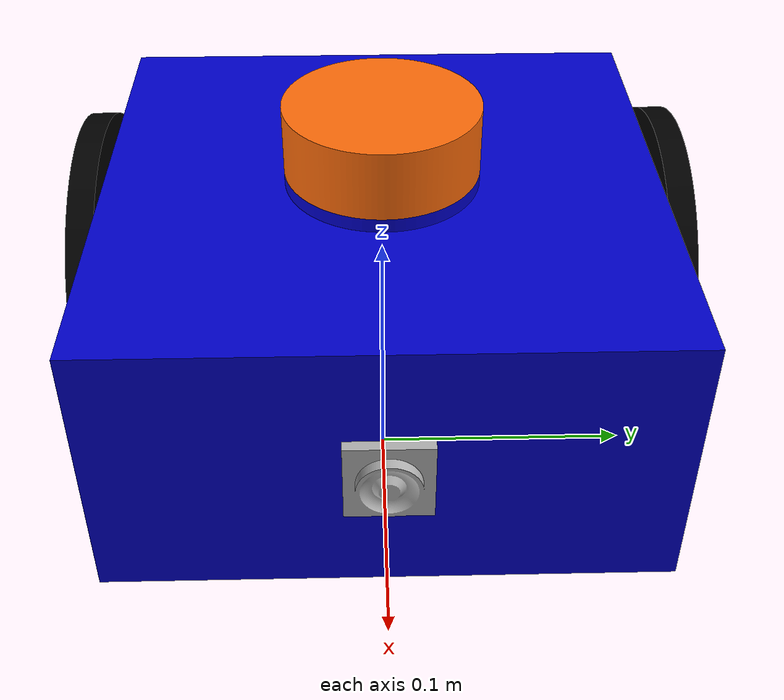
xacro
<?xml version="1.0" ?>
<robot name="ogmen" xmlns:xacro="http://www.ros.org/wiki/xacro">

<xacro:include filename="$(find ogmen_description)/urdf/materials.xacro" />
<xacro:include filename="$(find ogmen_description)/urdf/ogmen.trans" />
<xacro:include filename="$(find ogmen_description)/urdf/ogmen.gazebo" />
<link name="base_link">
  <inertial>
    <origin xyz="0.0002601655087414222 1.8020058980725258e-17 0.07997264614978274" rpy="0 0 0"/>
    <mass value="31.695938027968158"/>
    <inertia ixx="0.131924" iyy="0.132381" izz="0.210027" ixy="-0.0" iyz="0.0" ixz="0.000528"/>
  </inertial>
  <visual>
    <origin xyz="0 0 0" rpy="0 0 0"/>
    <geometry>
      <mesh filename="file://$(find ogmen_description)/meshes/base_link.stl" scale="0.001 0.001 0.001"/>
    </geometry>
    <material name="blue"/>
  </visual>
  <collision>
    <origin xyz="0 0 0" rpy="0 0 0"/>
    <geometry>
      <mesh filename="file://$(find ogmen_description)/meshes/base_link.stl" scale="0.001 0.001 0.001"/>
    </geometry>
  </collision>
</link>

<link name="right_wheel_1">
  <inertial>
    <origin xyz="2.7755575615628914e-17 -0.0050000000000000044 0.0" rpy="0 0 0"/>
    <mass value="1.0419484734712243"/>
    <inertia ixx="0.001109" iyy="0.002201" izz="0.001109" ixy="0.0" iyz="0.0" ixz="0.0"/>
  </inertial>
  <visual>
    <origin xyz="0.035 0.105 -0.065" rpy="0 0 0"/>
    <geometry>
      <mesh filename="file://$(find ogmen_description)/meshes/right_wheel_1.stl" scale="0.001 0.001 0.001"/>
    </geometry>
    <material name="black"/>
  </visual>
  <collision>
    <origin xyz="0.035 0.105 -0.065" rpy="0 0 0"/>
    <geometry>
      <mesh filename="file://$(find ogmen_description)/meshes/right_wheel_1.stl" scale="0.001 0.001 0.001"/>
    </geometry>
  </collision>
</link>

<link name="left_wheel_1">
  <inertial>
    <origin xyz="6.938893903907228e-18 0.005000000000000018 0.0" rpy="0 0 0"/>
    <mass value="1.0419484734712248"/>
    <inertia ixx="0.001109" iyy="0.002201" izz="0.001109" ixy="-0.0" iyz="0.0" ixz="0.0"/>
  </inertial>
  <visual>
    <origin xyz="0.035 -0.105 -0.065" rpy="0 0 0"/>
    <geometry>
      <mesh filename="file://$(find ogmen_description)/meshes/left_wheel_1.stl" scale="0.001 0.001 0.001"/>
    </geometry>
    <material name="black"/>
  </visual>
  <collision>
    <origin xyz="0.035 -0.105 -0.065" rpy="0 0 0"/>
    <geometry>
      <mesh filename="file://$(find ogmen_description)/meshes/left_wheel_1.stl" scale="0.001 0.001 0.001"/>
    </geometry>
  </collision>
</link>

<link name="lidar_1">
  <inertial>
    <origin xyz="-5.908186836859213e-18 0.0 0.012499999999999983" rpy="0 0 0"/>
    <mass value="0.7552585088770711"/>
    <inertia ixx="0.000271" iyy="0.000271" izz="0.000463" ixy="-0.0" iyz="-0.0" ixz="-0.0"/>
  </inertial>
  <visual>
    <origin xyz="-0.0 -0.0 -0.135" rpy="0 0 0"/>
    <geometry>
      <mesh filename="file://$(find ogmen_description)/meshes/lidar_1.stl" scale="0.001 0.001 0.001"/>
    </geometry>
    <material name="orange"/>
  </visual>
  <collision>
    <origin xyz="-0.0 -0.0 -0.135" rpy="0 0 0"/>
    <geometry>
      <mesh filename="file://$(find ogmen_description)/meshes/lidar_1.stl" scale="0.001 0.001 0.001"/>
    </geometry>
  </collision>
</link>

<link name="camera_1">
  <inertial>
    <origin xyz="0.0029286607078167354 -2.3412840616061812e-14 0.0" rpy="0 0 0"/>
    <mass value="0.037775153384169265"/>
    <inertia ixx="5e-06" iyy="3e-06" izz="3e-06" ixy="0.0" iyz="0.0" ixz="-0.0"/>
  </inertial>
  <visual>
    <origin xyz="-0.1 -0.0 -0.08" rpy="0 0 0"/>
    <geometry>
      <mesh filename="file://$(find ogmen_description)/meshes/camera_1.stl" scale="0.001 0.001 0.001"/>
    </geometry>
    <material name="silver"/>
  </visual>
  <collision>
    <origin xyz="-0.1 -0.0 -0.08" rpy="0 0 0"/>
    <geometry>
      <mesh filename="file://$(find ogmen_description)/meshes/camera_1.stl" scale="0.001 0.001 0.001"/>
    </geometry>
  </collision>
</link>

<joint name="right_wheel_joint" type="continuous">
  <origin xyz="-0.035 -0.105 0.065" rpy="0 0 0"/>
  <parent link="base_link"/>
  <child link="right_wheel_1"/>
  <axis xyz="0.0 1.0 0.0"/>
</joint>

<joint name="left_wheel_joint" type="continuous">
  <origin xyz="-0.035 0.105 0.065" rpy="0 0 0"/>
  <parent link="base_link"/>
  <child link="left_wheel_1"/>
  <axis xyz="0.0 1.0 0.0"/>
</joint>

<joint name="Lidar_joint" type="fixed">
  <origin xyz="0.0 0.0 0.135" rpy="0 0 0"/>
  <parent link="base_link"/>
  <child link="lidar_1"/>
</joint>

<joint name="Camera_joint" type="fixed">
  <origin xyz="0.1 0.0 0.08" rpy="0 0 0"/>
  <parent link="base_link"/>
  <child link="camera_1"/>
</joint>

</robot>

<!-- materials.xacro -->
<robot name="ogmen" xmlns:xacro="http://www.ros.org/wiki/xacro" >

<material name="silver">
  <color rgba="0.700 0.700 0.700 1.000"/>
</material>
<material name="black">
  <color rgba="0.0 0.0 0.0 1.0"/>
</material>
<material name="blue">
  <color rgba="0.0 0.0 0.8 1.0"/>
</material>
<material name="green">
  <color rgba="0.0 0.8 0.0 1.0"/>
</material>
<material name="grey">
  <color rgba="0.2 0.2 0.2 1.0"/>
</material>
<material name="orange">
  <color rgba="${255/255} ${108/255} ${10/255} 1.0"/>
</material>
<material name="brown">
  <color rgba="${222/255} ${207/255} ${195/255} 1.0"/>
</material>
<material name="red">
  <color rgba="0.8 0.0 0.0 1.0"/>
</material>
<material name="white">
  <color rgba="1.0 1.0 1.0 1.0"/>
</material>
</robot>

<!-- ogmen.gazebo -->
<robot name="ogmen" xmlns:xacro="http://www.ros.org/wiki/xacro" >

<xacro:property name="camera_color" value="Gazebo/Silver" />
<xacro:property name="body_color" value="Gazebo/Blue" />
<xacro:property name="lidar_color" value="Gazebo/Yellow" />
<xacro:property name="wheel_color" value="Gazebo/Yellow" />

<!-- Diff drive Gazebo plugin-->
<gazebo>
	<plugin name="test_robot_diff_drive" filename="libgazebo_ros_diff_drive.so">
		<update_rate>30</update_rate>
		<left_joint>left_wheel_joint</left_joint>
		<right_joint>right_wheel_joint</right_joint>
		<wheel_separation>0.210</wheel_separation>
		<wheel_diameter>0.130</wheel_diameter>
		<max_wheel_torque>20</max_wheel_torque>
		<max_wheel_acceleration>1.0</max_wheel_acceleration>
		<command_topic>cmd_vel</command_topic>
		<publish_odom>true</publish_odom>
		<publish_odom_tf>true</publish_odom_tf>
		<publish_wheel_tf>true</publish_wheel_tf>
		<odometry_topic>odom</odometry_topic>
		<odometry_frame>odom</odometry_frame>
		<robot_base_frame>base_link</robot_base_frame>
		<odometry_source>1</odometry_source>
	</plugin>
</gazebo>

<!-- Lidar -->
<gazebo reference="lidar_1">
  <sensor type="ray" name="laser_back">
    <pose>0 0 0 0 0 0</pose>
    <visualize>true</visualize>
    <update_rate>40</update_rate>
    <ray>
      <scan>
          <horizontal>
              <samples>360</samples>
              <min_angle>-3.14</min_angle>
              <max_angle>3.14</max_angle>
          </horizontal>
      </scan>
      <range>
          <min>0.3</min>
          <max>12</max>
      </range>
      <noise>
        <type>gaussian</type>
        <mean>0.0</mean>
        <stddev>0.01</stddev>
      </noise>
    </ray>
    <plugin name="scan" filename="libgazebo_ros_ray_sensor.so">
      <ros>
        <remapping>~/out:=scan/unfiltered</remapping>
      </ros>
      <output_type>sensor_msgs/LaserScan</output_type>
      <frame_name>lidar_1</frame_name>
    </plugin>
  </sensor>
</gazebo>

 <!-- camera -->
<gazebo reference="camera_1">
  <sensor type="camera" name="camera1">
    <update_rate>30.0</update_rate>
    <camera name="head">
      <horizontal_fov>1.3962634</horizontal_fov>
      <image>
        <width>800</width>
        <height>800</height>
        <format>R8G8B8</format>
      </image>
      <clip>
        <near>0.05</near>
        <far>300</far>
      </clip>
      <noise>
        <type>gaussian</type>
        <!-- Noise is sampled independently per pixel on each frame.
             That pixel's noise value is added to each of its color
             channels, which at that point lie in the range [0,1]. -->
        <mean>0.0</mean>
        <stddev>0.007</stddev>
      </noise>
    </camera>
    <plugin name="camera_controller" filename="libgazebo_ros_camera.so">
      <alwaysOn>true</alwaysOn>
      <updateRate>0.0</updateRate>
      <cameraName>robot/camera1</cameraName>
      <imageTopicName>image_raw</imageTopicName>
      <cameraInfoTopicName>camera_info</cameraInfoTopicName>
      <frameName>camera_1</frameName>
      <hackBaseline>0.07</hackBaseline>
      <distortionK1>0.0</distortionK1>
      <distortionK2>0.0</distortionK2>
      <distortionK3>0.0</distortionK3>
      <distortionT1>0.0</distortionT1>
      <distortionT2>0.0</distortionT2>
    </plugin>
  </sensor>
</gazebo>

<gazebo reference="base_link">
  <material>${body_color}</material>
  <mu1>0.2</mu1>
  <mu2>0.2</mu2>
  <self_collide>true</self_collide>
  <gravity>true</gravity>
</gazebo>

<gazebo reference="right_wheel_1">
  <material>${wheel_color}</material>
  <mu1>0.2</mu1>
  <mu2>0.2</mu2>
  <self_collide>true</self_collide>
</gazebo>

<gazebo reference="left_wheel_1">
  <material>${wheel_color}</material>
  <mu1>0.2</mu1>
  <mu2>0.2</mu2>
  <self_collide>true</self_collide>
</gazebo>

<gazebo reference="lidar_1">
  <material>${lidar_color}</material>
  <mu1>0.2</mu1>
  <mu2>0.2</mu2>
  <self_collide>true</self_collide>
</gazebo>

<gazebo reference="camera_1">
  <material>${camera_color}</material>
  <mu1>0.2</mu1>
  <mu2>0.2</mu2>
  <self_collide>true</self_collide>
</gazebo>

</robot>
